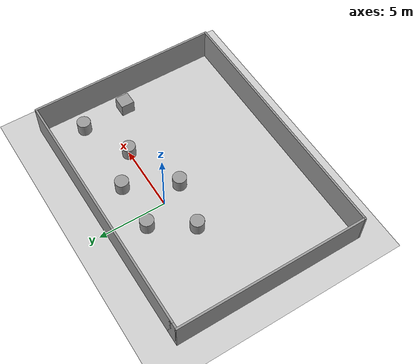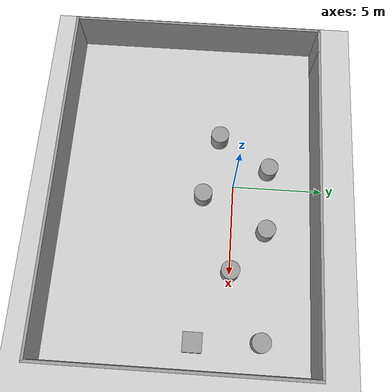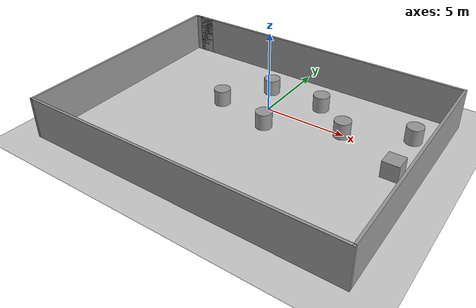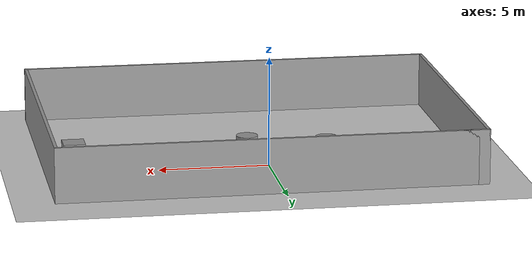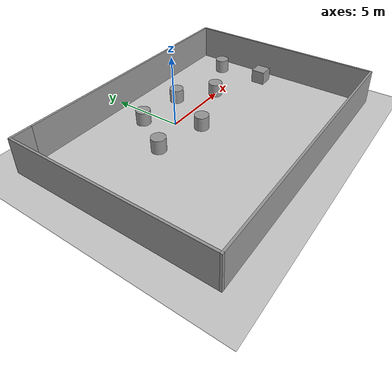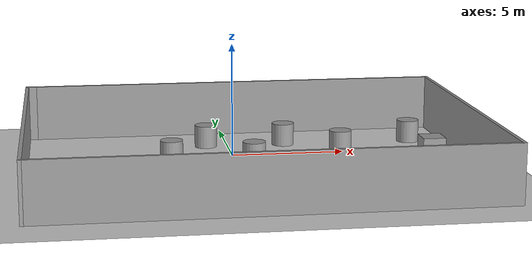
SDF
<sdf version="1.6">
 <world name="default">
  <light name="sun" type="directional">
   <pose>0 0 10 0 -0 0</pose>
   <diffuse>0.8 0.8 0.8 1</diffuse>
   <specular>0.2 0.2 0.2 1</specular>
   <attenuation>
    <range>1000</range>
    <constant>0.9</constant>
    <linear>0.01</linear>
    <quadratic>0.001</quadratic>
   </attenuation>
   <direction>0 0.5 -0.9</direction>
  </light>
  <light name="point_light" type="point">
   <pose>0 -0.377195 6.59868 0 -0 0</pose>
   <diffuse>0.784314 0.784314 0.784314 1</diffuse>
   <specular>0.0980392 0.0980392 0.0980392 1</specular>
   <attenuation>
    <range>50</range>
    <constant>0.8</constant>
    <linear>0</linear>
    <quadratic>0.001</quadratic>
   </attenuation>
   <cast_shadows>0</cast_shadows>
   <direction>0 0 -1</direction>
  </light>
  <model name="ground_plane">
   <static>1</static>
   <link name="link">
    <collision name="collision">
     <geometry><plane><normal>0 0 1</normal><size>100 100</size></plane></geometry>
     <surface>
      <contact><collide_bitmask>65535</collide_bitmask></contact>
      <friction><ode><mu>100</mu><mu2>50</mu2></ode></friction>
     </surface>
    </collision>
    <visual name="visual">
     <cast_shadows>0</cast_shadows>
     <geometry><plane><normal>0 0 1</normal><size>100 100</size></plane></geometry>
     <material>
      <script><uri>file://media/materials/scripts/gazebo.material</uri><name>Gazebo/Grey</name></script>
     </material>
    </visual>
   </link>
  </model>
  <gravity>0 0 -9.8</gravity>
  <magnetic_field>6e-06 2.3e-05 -4.2e-05</magnetic_field>
  <atmosphere type="adiabatic"/>
  <physics name="default_physics" default="0" type="ode">
   <max_step_size>0.001</max_step_size>
   <real_time_factor>1</real_time_factor>
   <real_time_update_rate>1000</real_time_update_rate>
  </physics>
  <scene><ambient>0.4 0.4 0.4 1</ambient><background>0.7 0.7 0.7 1</background><shadows>1</shadows></scene>
  <spherical_coordinates>
   <surface_model>EARTH_WGS84</surface_model>
   <latitude_deg>0</latitude_deg>
   <longitude_deg>0</longitude_deg>
   <elevation>0</elevation>
   <heading_deg>0</heading_deg>
  </spherical_coordinates>
  <model name="unit_box">
   <pose>8.65003 -1.76109 0.499995 0 1e-05 0</pose>
   <link name="link">
    <inertial>
     <mass>1</mass>
     <inertia>
      <ixx>0.166667</ixx>
      <ixy>0</ixy>
      <ixz>0</ixz>
      <iyy>0.166667</iyy>
      <iyz>0</iyz>
      <izz>0.166667</izz>
     </inertia>
    </inertial>
    <collision name="collision"><geometry><box><size>1 1 1</size></box></geometry></collision>
    <visual name="visual">
     <geometry><box><size>1 1 1</size></box></geometry>
     <material>
      <script><name>Gazebo/Grey</name><uri>file://media/materials/scripts/gazebo.material</uri></script>
     </material>
    </visual>
   </link>
  </model>
  <model name="unit_cylinder">
   <pose>8.45593 1.72022 0.499998 3e-06 -3e-06 0</pose>
   <link name="link">
    <inertial>
     <mass>1</mass>
     <inertia><ixx>0.145833</ixx><ixy>0</ixy><ixz>0</ixz><iyy>0.145833</iyy><iyz>0</iyz><izz>0.125</izz></inertia>
    </inertial>
    <collision name="collision">
     <geometry><cylinder><radius>0.5</radius><length>1</length></cylinder></geometry>
    </collision>
    <visual name="visual">
     <geometry><cylinder><radius>0.5</radius><length>1</length></cylinder></geometry>
     <material>
      <script><name>Gazebo/Grey</name><uri>file://media/materials/scripts/gazebo.material</uri></script>
     </material>
    </visual>
   </link>
  </model>
  <model name="unit_cylinder_clone">
   <pose>4.89906 0.010779 0.499993 -3e-06 -3e-06 0</pose>
   <link name="link">
    <inertial>
     <mass>1</mass>
     <inertia><ixx>0.145833</ixx><ixy>0</ixy><ixz>0</ixz><iyy>0.145833</iyy><iyz>0</iyz><izz>0.125</izz></inertia>
    </inertial>
    <collision name="collision">
     <geometry><cylinder><radius>0.5</radius><length>1</length></cylinder></geometry>
    </collision>
    <visual name="visual">
     <geometry><cylinder><radius>0.5</radius><length>1</length></cylinder></geometry>
     <material>
      <script><name>Gazebo/Grey</name><uri>file://media/materials/scripts/gazebo.material</uri></script>
     </material>
    </visual>
   </link>
  </model>
  <model name="unit_cylinder_clone_0">
   <pose>2.57796 1.84563 0.499997 3e-06 3e-06 0</pose>
   <link name="link">
    <inertial>
     <mass>1</mass>
     <inertia><ixx>0.145833</ixx><ixy>0</ixy><ixz>0</ixz><iyy>0.145833</iyy><iyz>0</iyz><izz>0.125</izz></inertia>
    </inertial>
    <collision name="collision">
     <geometry><cylinder><radius>0.5</radius><length>1</length></cylinder></geometry>
    </collision>
    <visual name="visual">
     <geometry><cylinder><radius>0.5</radius><length>1</length></cylinder></geometry>
     <material>
      <script><name>Gazebo/Grey</name><uri>file://media/materials/scripts/gazebo.material</uri></script>
     </material>
    </visual>
   </link>
  </model>
  <model name="unit_cylinder_clone_1">
   <pose>-0.987146 1.91773 0.499997 3e-06 3e-06 0</pose>
   <link name="link">
    <inertial>
     <mass>1</mass>
     <inertia><ixx>0.145833</ixx><ixy>0</ixy><ixz>0</ixz><iyy>0.145833</iyy><iyz>0</iyz><izz>0.125</izz></inertia>
    </inertial>
    <collision name="collision">
     <geometry><cylinder><radius>0.5</radius><length>1</length></cylinder></geometry>
    </collision>
    <visual name="visual">
     <geometry><cylinder><radius>0.5</radius><length>1</length></cylinder></geometry>
     <material>
      <script><name>Gazebo/Grey</name><uri>file://media/materials/scripts/gazebo.material</uri></script>
     </material>
    </visual>
   </link>
  </model>
  <model name="unit_cylinder_clone_2">
   <pose>-2.79484 -0.915275 0.499997 3e-06 3e-06 0</pose>
   <link name="link">
    <inertial>
     <mass>1</mass>
     <inertia><ixx>0.145833</ixx><ixy>0</ixy><ixz>0</ixz><iyy>0.145833</iyy><iyz>0</iyz><izz>0.125</izz></inertia>
    </inertial>
    <collision name="collision">
     <geometry><cylinder><radius>0.5</radius><length>1</length></cylinder></geometry>
    </collision>
    <visual name="visual">
     <geometry><cylinder><radius>0.5</radius><length>1</length></cylinder></geometry>
     <material>
      <script><name>Gazebo/Grey</name><uri>file://media/materials/scripts/gazebo.material</uri></script>
     </material>
    </visual>
   </link>
  </model>
  <model name="unit_cylinder_clone_3">
   <pose>0.738686 -1.681 0.499997 3e-06 3e-06 0</pose>
   <link name="link">
    <inertial>
     <mass>1</mass>
     <inertia><ixx>0.145833</ixx><ixy>0</ixy><ixz>0</ixz><iyy>0.145833</iyy><iyz>0</iyz><izz>0.125</izz></inertia>
    </inertial>
    <collision name="collision">
     <geometry><cylinder><radius>0.5</radius><length>1</length></cylinder></geometry>
    </collision>
    <visual name="visual">
     <geometry><cylinder><radius>0.5</radius><length>1</length></cylinder></geometry>
     <material>
      <script><name>Gazebo/Grey</name><uri>file://media/materials/scripts/gazebo.material</uri></script>
     </material>
    </visual>
   </link>
  </model>
  <model name="big_room">
   <pose>0.504208 -2.60394 0 0 -0 0</pose>
   <link name="Wall_5">
    <collision name="Wall_5_Collision">
     <geometry><box><size>18.75 0.15 2.5</size></box></geometry>
     <pose>0 0 1.25 0 -0 0</pose>
    </collision>
    <visual name="Wall_5_Visual">
     <pose>0 0 1.25 0 -0 0</pose>
     <geometry><box><size>18.75 0.15 2.5</size></box></geometry>
     <material>
      <script><uri>file://media/materials/scripts/gazebo.material</uri><name>Gazebo/Grey</name></script>
      <ambient>1 1 1 1</ambient>
     </material>
     <meta><layer>0</layer></meta>
    </visual>
    <pose>0.25 7.05 0 0 -0 0</pose>
   </link>
   <link name="Wall_6">
    <collision name="Wall_6_Collision">
     <geometry><box><size>14.25 0.15 2.5</size></box></geometry>
     <pose>0 0 1.25 0 -0 0</pose>
    </collision>
    <visual name="Wall_6_Visual">
     <pose>0 0 1.25 0 -0 0</pose>
     <geometry><box><size>14.25 0.15 2.5</size></box></geometry>
     <material>
      <script><uri>file://media/materials/scripts/gazebo.material</uri><name>Gazebo/Grey</name></script>
      <ambient>1 1 1 1</ambient>
     </material>
     <meta><layer>0</layer></meta>
    </visual>
    <pose>9.55 0 0 0 -0 -1.5708</pose>
   </link>
   <link name="Wall_7">
    <collision name="Wall_7_Collision">
     <geometry><box><size>19.25 0.15 2.5</size></box></geometry>
     <pose>0 0 1.25 0 -0 0</pose>
    </collision>
    <visual name="Wall_7_Visual">
     <pose>0 0 1.25 0 -0 0</pose>
     <geometry><box><size>19.25 0.15 2.5</size></box></geometry>
     <material>
      <script><uri>file://media/materials/scripts/gazebo.material</uri><name>Gazebo/Grey</name></script>
      <ambient>1 1 1 1</ambient>
     </material>
     <meta><layer>0</layer></meta>
    </visual>
    <pose>0 -7.05 0 0 -0 3.14159</pose>
   </link>
   <link name="Wall_8">
    <collision name="Wall_8_Collision">
     <geometry><box><size>14.25 0.15 2.5</size></box></geometry>
     <pose>0 0 1.25 0 -0 0</pose>
    </collision>
    <visual name="Wall_8_Visual">
     <pose>0 0 1.25 0 -0 0</pose>
     <geometry><box><size>14.25 0.15 2.5</size></box></geometry>
     <material>
      <script><uri>file://media/materials/scripts/gazebo.material</uri><name>Gazebo/Grey</name></script>
      <ambient>1 1 1 1</ambient>
     </material>
     <meta><layer>0</layer></meta>
    </visual>
    <pose>-9.55 0 0 0 -0 1.5708</pose>
   </link>
   <link name="Wall_9">
    <collision name="Wall_9_Collision">
     <geometry><box><size>1.5 0.15 2.5</size></box></geometry>
     <pose>0 0 1.25 0 -0 0</pose>
    </collision>
    <visual name="Wall_9_Visual">
     <pose>0 0 1.25 0 -0 0</pose>
     <geometry><box><size>1.5 0.15 2.5</size></box></geometry>
     <material>
      <script><uri>file://media/materials/scripts/gazebo.material</uri><name>Gazebo/Grey</name></script>
      <ambient>1 1 1 1</ambient>
     </material>
     <meta><layer>0</layer></meta>
    </visual>
    <pose>-8.875 7.05 0 0 -0 0</pose>
   </link>
   <static>1</static>
  </model>
 </world>
</sdf>
